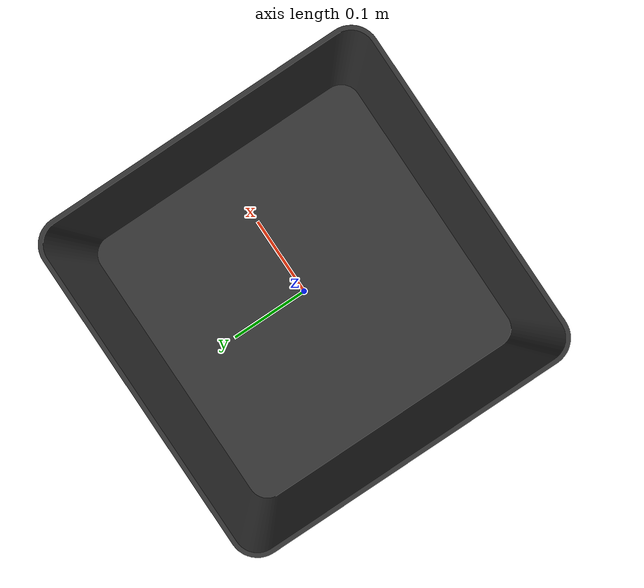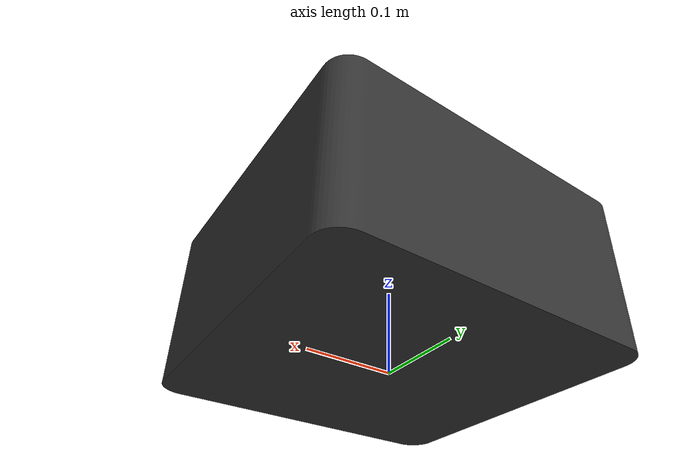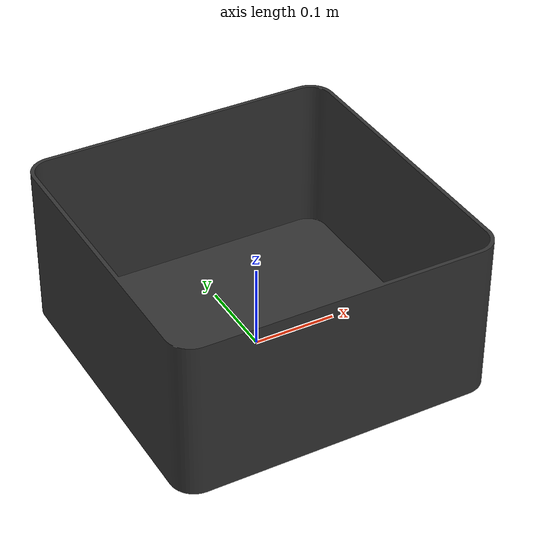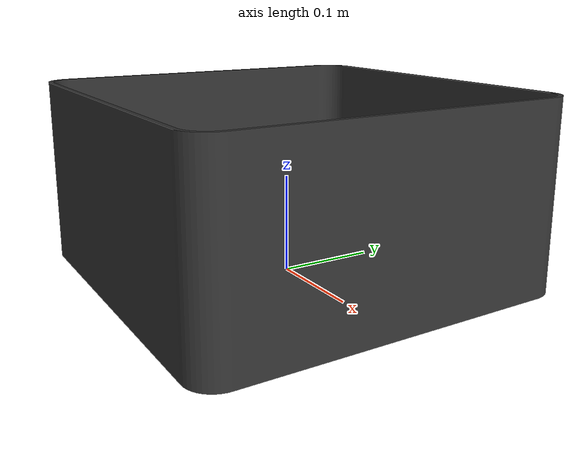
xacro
<?xml version="1.0"?>
<robot name="swab_container" xmlns:xacro="http://www.ros.org/wiki/xacro">

  <xacro:property name="PI" value="3.1415926535897931"/>
  <xacro:arg name="swab_container_link_id" default="swab_container_link"/>
  <xacro:macro name="swab_container" params="prefix parent link_id">
    <material name="swab_container_green">
      <color rgba="0 1 0 1" />
      <ambient>0 0 0 1</ambient>
      <diffuse>1 0.39 0.28 1</diffuse>
      <specular>0.01 0.01 0.01 1</specular>
      <emissive>0 0 0 1</emissive>
    </material>
    <link name="${link_id}">
      <inertial>
        <mass value="1" />
        <origin xyz="0 0 0" />
        <inertia ixx="1" ixy="0" ixz="0" iyy="1" iyz="0" izz="1" />
      </inertial>
      <visual>
        <origin xyz="0 0 0" rpy="0 0 0" />
        <geometry>
          <mesh filename="package://liquid_pickup/meshes/swab_container/Basket_V2.stl" scale="0.95 0.95 0.95" />
        </geometry>
        <material name="darkgrey">
          <color rgba="0.2 0.2 0.2 1"/>
       </material>
      </visual>
      <collision>
        <origin xyz="0 0 0" rpy="0 0 0" />
        <geometry>
          <mesh filename="package://liquid_pickup/meshes/swab_container/Basket_V2.stl" scale="0.95 0.95 0.95" />
        </geometry>
      </collision>
    </link>
    <gazebo reference="${link_id}">
      <gravity>0</gravity>
    </gazebo>
  </xacro:macro>

  <xacro:swab_container prefix="summit" parent="base_footprint" link_id="$(arg swab_container_link_id)" />
</robot>
